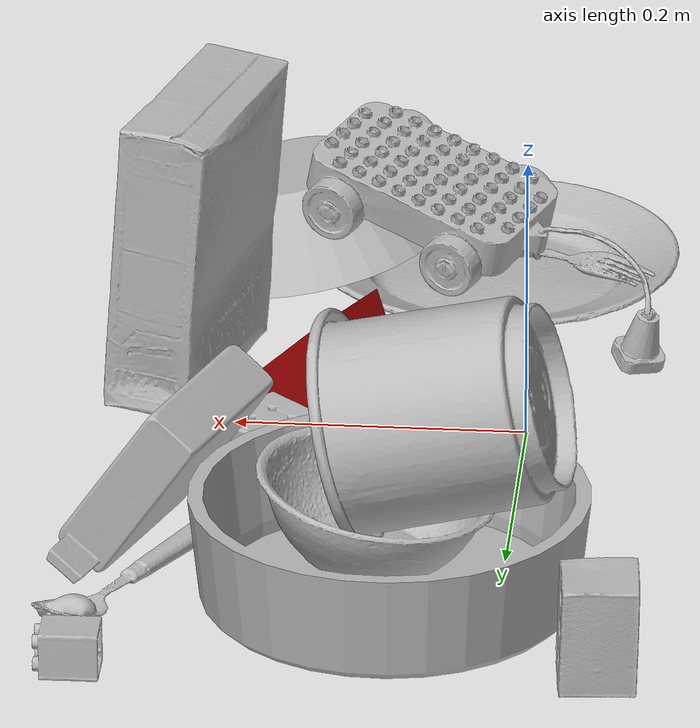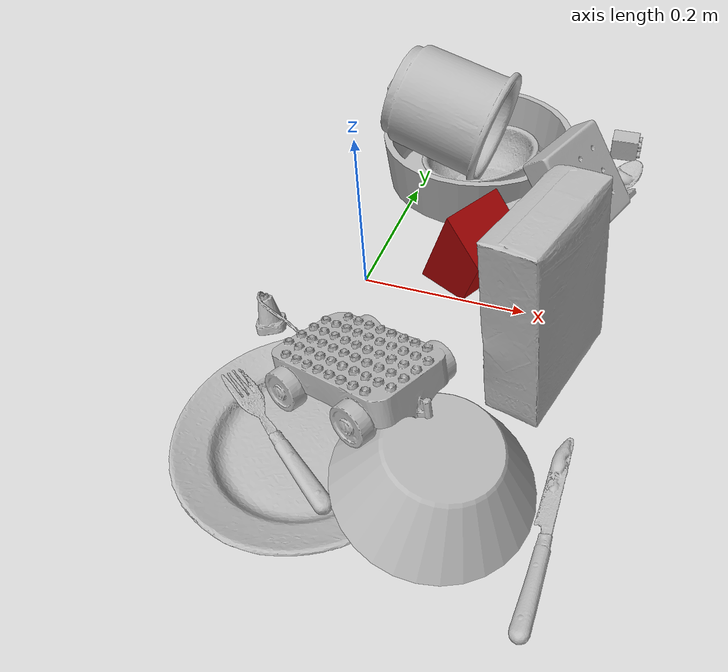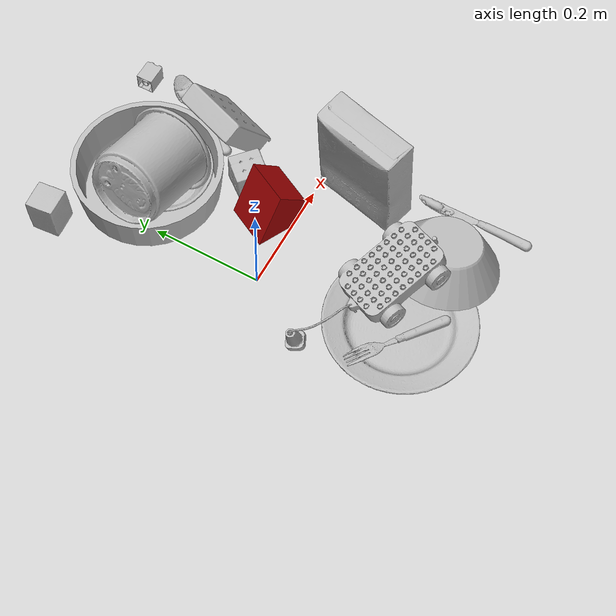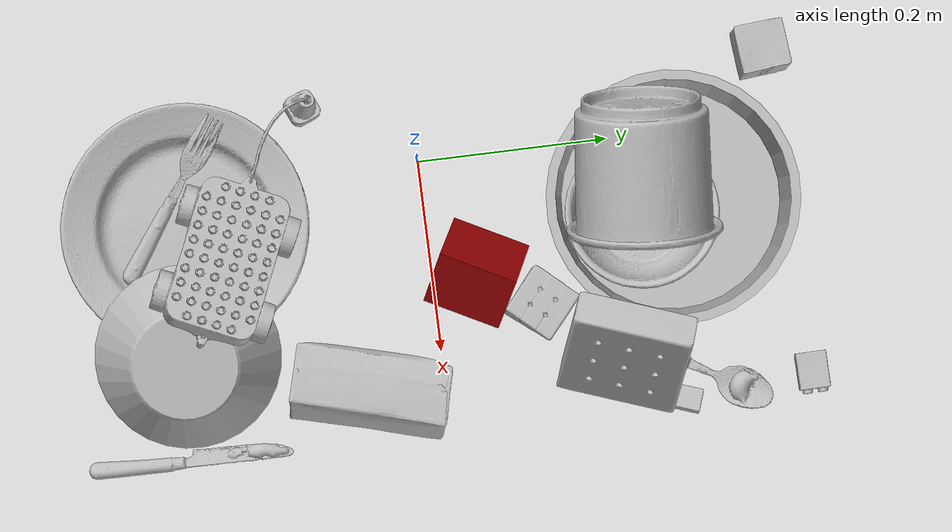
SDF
<sdf version="1.4">
  <world name="default">
    <light name="light1" type="point">
      <pose>0 0 1 0 0 0</pose>
      <diffuse>3 3 3 1</diffuse>
      <specular>3 3 3 1</specular>
    </light>
    <light name="light2" type="point">
      <pose>0 0.5 2 0 0 0</pose>
      <diffuse>1 1 1 1</diffuse>
      <specular>1 1 1 1</specular>
    </light>
    <light name="light3" type="point">
      <pose>0 0.5 2 0 0 0</pose>
      <diffuse>3 3 3 1</diffuse>
      <specular>3 3 3 1</specular>
    </light>
    <scene>
      <ambient>0.7 0.7 0.7</ambient>
    </scene>
    <model name="plate1">
      <link name="link_plate1">
        <collision name="default">
          <geometry>
            <mesh>
              <uri>model://pan_tefal/collision_meshes/collision.obj</uri>
              <scale>1.0 1.0 1.0</scale>
            </mesh>
          </geometry>
          <surface>
            <friction>
              <ode>
                <mu>0.5</mu>
                <mu2>0.5</mu2>
              </ode>
            </friction>
          <contact>
        <ode>
            <max_vel>0</max_vel>
            <min_depth>0.0001</min_depth>
            <kp>1e8</kp>
        </ode>
    </contact></surface>
        </collision>
        <visual name="default">
          <geometry>
            <mesh>
              <uri>model://pan_tefal/visual_meshes/visual.dae</uri>
              <scale>1.0 1.0 1.0</scale>
            </mesh>
          </geometry>
        </visual>
        <inertial>
          <mass>0.7575002908706665</mass>
          <pose>-0.00018002181604970247 3.278869189671241e-05 -0.00851493701338768 0.0008190213215647545 -0.0003301469994364688 -0.3318472895374236</pose>
          <inertia>
            <ixx>0.0052289874</ixx>
            <iyy>0.0052627004</iyy>
            <izz>0.009625561</izz>
            <ixy>0</ixy>
            <ixz>0</ixz>
            <iyz>0</iyz>
          </inertia>
        </inertial>
      </link>
      <pose>0.0721113309264183 0.2586056888103485 0.037962984293699265 0.00044567766699468784 0.0005794234542496426 2.2624829839365734</pose>
    </model>
    <model name="plate2">
      <link name="link_plate2">
        <collision name="default">
          <geometry>
            <mesh>
              <uri>model://plate/collision_meshes/collision.obj</uri>
              <scale>1.0 1.0 1.0</scale>
            </mesh>
          </geometry>
          <surface>
            <friction>
              <ode>
                <mu>0.5</mu>
                <mu2>0.5</mu2>
              </ode>
            </friction>
          <contact>
        <ode>
            <max_vel>0</max_vel>
            <min_depth>0.0001</min_depth>
            <kp>1e8</kp>
        </ode>
    </contact></surface>
        </collision>
        <visual name="default">
          <geometry>
            <mesh>
              <uri>model://plate/visual_meshes/visual.dae</uri>
              <scale>1.0 1.0 1.0</scale>
            </mesh>
          </geometry>
        </visual>
        <inertial>
          <mass>0.24305373430252075</mass>
          <pose>-0.0006044657784514129 0.0002782582014333457 -0.0010561988456174731 0.0022187349237576767 -0.0032255124479001144 0.4526250186623527</pose>
          <inertia>
            <ixx>0.00113701</ixx>
            <iyy>0.0011261352</iyy>
            <izz>0.0022238225</izz>
            <ixy>0</ixy>
            <ixz>0</ixz>
            <iyz>0</iyz>
          </inertia>
        </inertial>
      </link>
      <pose>0.03835368528962135 -0.25009793043136597 0.01373310387134552 6.229286185834152e-06 5.351086350583612e-06 0.7292852451922166</pose>
    </model>
    <model name="bowl1">
      <link name="link_bowl1">
        <collision name="default">
          <geometry>
            <mesh>
              <uri>model://bowl/collision_meshes/collision.obj</uri>
              <scale>1.0 1.0 1.0</scale>
            </mesh>
          </geometry>
          <surface>
            <friction>
              <ode>
                <mu>0.5</mu>
                <mu2>0.5</mu2>
              </ode>
            </friction>
          <contact>
        <ode>
            <max_vel>0</max_vel>
            <min_depth>0.0001</min_depth>
            <kp>1e8</kp>
        </ode>
    </contact></surface>
        </collision>
        <visual name="default">
          <geometry>
            <mesh>
              <uri>model://bowl/visual_meshes/visual.dae</uri>
              <scale>1.0 1.0 1.0</scale>
            </mesh>
          </geometry>
        </visual>
        <inertial>
          <mass>0.08028676360845566</mass>
          <pose>0.00020445045083761215 -0.0010302026057615876 -0.0008042661938816309 -0.015764207515600946 0.014546645366850262 0.7140316236369888</pose>
          <inertia>
            <ixx>0.00018442512</ixx>
            <iyy>0.00018030431</iyy>
            <izz>0.0003102665</izz>
            <ixy>0</ixy>
            <ixz>0</ixz>
            <iyz>0</iyz>
          </inertia>
        </inertial>
      </link>
      <pose>0.08684560656547546 0.22434920072555542 0.041465237736701965 -0.12586883607511692 0.0811523643109204 1.9311146142720839</pose>
    </model>
    <model name="bowl2">
      <link name="link_bowl2">
        <collision name="default">
          <geometry>
            <mesh>
              <uri>model://bowl_a/collision_meshes/collision.obj</uri>
              <scale>1.0 1.0 1.0</scale>
            </mesh>
          </geometry>
          <surface>
            <friction>
              <ode>
                <mu>0.5</mu>
                <mu2>0.5</mu2>
              </ode>
            </friction>
          <contact>
        <ode>
            <max_vel>0</max_vel>
            <min_depth>0.0001</min_depth>
            <kp>1e8</kp>
        </ode>
    </contact></surface>
        </collision>
        <visual name="default">
          <geometry>
            <mesh>
              <uri>model://bowl_a/visual_meshes/visual.dae</uri>
              <scale>1.0 1.0 1.0</scale>
            </mesh>
          </geometry>
        </visual>
        <inertial>
          <mass>0.2016693353652954</mass>
          <pose>0.000278673687716946 4.731108856503852e-05 -0.0013765295734629035 -0.0009805301894988984 -0.0010938186520021772 -0.19123883274053055</pose>
          <inertia>
            <ixx>0.00057416206</ixx>
            <iyy>0.000577687</iyy>
            <izz>0.0010211696</izz>
            <ixy>0</ixy>
            <ixz>0</ixz>
            <iyz>0</iyz>
          </inertia>
        </inertial>
      </link>
      <pose>0.1790096014738083 -0.2643047273159027 0.047955311834812164 3.027816744332869 -0.15377995109814166 -2.6583022662745566</pose>
    </model>
    <model name="silverware1">
      <link name="link_silverware1">
        <collision name="default">
          <geometry>
            <mesh>
              <uri>model://spoon/collision_meshes/collision.obj</uri>
              <scale>1.0 1.0 1.0</scale>
            </mesh>
          </geometry>
          <surface>
            <friction>
              <ode>
                <mu>0.5</mu>
                <mu2>0.5</mu2>
              </ode>
            </friction>
          <contact>
        <ode>
            <max_vel>0</max_vel>
            <min_depth>0.0001</min_depth>
            <kp>1e8</kp>
        </ode>
    </contact></surface>
        </collision>
        <visual name="default">
          <geometry>
            <mesh>
              <uri>model://spoon/visual_meshes/visual.dae</uri>
              <scale>1.0 1.0 1.0</scale>
            </mesh>
          </geometry>
        </visual>
        <inertial>
          <mass>0.023438503965735435</mass>
          <pose>-0.005526317749172449 -0.0016034176805987954 -0.000727164966519922 0.03521671071703309 -0.03906584129558259 0.006150610048623938</pose>
          <inertia>
            <ixx>1.3036873e-06</ixx>
            <iyy>8.918272e-05</iyy>
            <izz>8.982564e-05</izz>
            <ixy>0</ixy>
            <ixz>0</ixz>
            <iyz>0</iyz>
          </inertia>
        </inertial>
      </link>
      <pose>0.2427399754524231 0.25567111372947693 0.00838526338338852 0.006731781795711009 0.026892991533530045 1.0356352105693498</pose>
    </model>
    <model name="box1">
      <link name="link_box1">
        <collision name="default">
          <geometry>
            <mesh>
              <uri>model://cracker_box/collision_meshes/collision.obj</uri>
              <scale>1.0 1.0 1.0</scale>
            </mesh>
          </geometry>
          <surface>
            <friction>
              <ode>
                <mu>0.5</mu>
                <mu2>0.5</mu2>
              </ode>
            </friction>
          <contact>
        <ode>
            <max_vel>0</max_vel>
            <min_depth>0.0001</min_depth>
            <kp>1e8</kp>
        </ode>
    </contact></surface>
        </collision>
        <visual name="default">
          <geometry>
            <mesh>
              <uri>model://cracker_box/visual_meshes/visual.dae</uri>
              <scale>1.0 1.0 1.0</scale>
            </mesh>
          </geometry>
        </visual>
        <inertial>
          <mass>3.1733922958374023</mass>
          <pose>0.0009464119793847203 0.00025434247800149024 -0.0017029535956680775 -0.00031620768891544627 -0.011106485874643508 0.0025467963987026074</pose>
          <inertia>
            <ixx>0.008071693</ixx>
            <iyy>0.013327951</iyy>
            <izz>0.01902021</izz>
            <ixy>0</ixy>
            <ixz>0</ixz>
            <iyz>0</iyz>
          </inertia>
        </inertial>
      </link>
      <pose>0.23268653452396393 -0.0771154910326004 0.10714130848646164 -3.031022297940299 -1.5000586660093584 2.7633892316238096</pose>
    </model>
    <model name="box2">
      <link name="link_box2">
        <collision name="default">
          <geometry>
            <mesh>
              <uri>model://rubiks_cube/collision_meshes/collision.obj</uri>
              <scale>1.0 1.0 1.0</scale>
            </mesh>
          </geometry>
          <surface>
            <friction>
              <ode>
                <mu>0.5</mu>
                <mu2>0.5</mu2>
              </ode>
            </friction>
          <contact>
        <ode>
            <max_vel>0</max_vel>
            <min_depth>0.0001</min_depth>
            <kp>1e8</kp>
        </ode>
    </contact></surface>
        </collision>
        <visual name="default">
          <geometry>
            <mesh>
              <uri>model://rubiks_cube/visual_meshes/visual.dae</uri>
              <scale>1.0 1.0 1.0</scale>
            </mesh>
          </geometry>
        </visual>
        <inertial>
          <mass>0.15184316039085388</mass>
          <pose>2.6721041649580002e-05 5.2569666877388954e-05 -7.264316536748083e-06 -0.0546734747968529 -0.09813870099197174 -0.03445517010401606</pose>
          <inertia>
            <ixx>8.390353e-05</ixx>
            <iyy>8.351226e-05</iyy>
            <izz>8.459882e-05</izz>
            <ixy>0</ixy>
            <ixz>0</ixz>
            <iyz>0</iyz>
          </inertia>
        </inertial>
      </link>
      <pose>0.16393691301345825 0.11079690605401993 0.029261911287903786 1.2513634792496584 1.5373758374935425 -1.0142996560762456</pose>
    </model>
    <model name="cup1">
      <link name="link_cup1">
        <collision name="default">
          <geometry>
            <mesh>
              <uri>model://f_cups/collision_meshes/collision.obj</uri>
              <scale>2.0 2.0 2.0</scale>
            </mesh>
          </geometry>
          <surface>
            <friction>
              <ode>
                <mu>0.5</mu>
                <mu2>0.5</mu2>
              </ode>
            </friction>
          <contact>
        <ode>
            <max_vel>0</max_vel>
            <min_depth>0.0001</min_depth>
            <kp>1e8</kp>
        </ode>
    </contact></surface>
        </collision>
        <visual name="default">
          <geometry>
            <mesh>
              <uri>model://f_cups/visual_meshes/visual.dae</uri>
              <scale>2.0 2.0 2.0</scale>
            </mesh>
          </geometry>
        </visual>
        <inertial>
          <mass>0.31799542903900146</mass>
          <pose>-0.006342939101159573 -0.0012480145087465644 -0.00731107359752059 0.7862267301708457 -0.2607925342729672 -0.18237300859269054</pose>
          <inertia>
            <ixx>0.0011956966</ixx>
            <iyy>0.0012542997</iyy>
            <izz>0.001305761</izz>
            <ixy>0</ixy>
            <ixz>0</ixz>
            <iyz>0</iyz>
          </inertia>
        </inertial>
      </link>
      <pose>0.03749193996191025 0.22978290915489197 0.12083495408296585 2.2316712536160037 -1.150659103546394 0.8708966709054382</pose>
    </model>
    <model name="silverware2">
      <link name="link_silverware2">
        <collision name="default">
          <geometry>
            <mesh>
              <uri>model://knife/collision_meshes/collision.obj</uri>
              <scale>1.0 1.0 1.0</scale>
            </mesh>
          </geometry>
          <surface>
            <friction>
              <ode>
                <mu>0.5</mu>
                <mu2>0.5</mu2>
              </ode>
            </friction>
          <contact>
        <ode>
            <max_vel>0</max_vel>
            <min_depth>0.0001</min_depth>
            <kp>1e8</kp>
        </ode>
    </contact></surface>
        </collision>
        <visual name="default">
          <geometry>
            <mesh>
              <uri>model://knife/visual_meshes/visual.dae</uri>
              <scale>1.0 1.0 1.0</scale>
            </mesh>
          </geometry>
        </visual>
        <inertial>
          <mass>0.01713745854794979</mass>
          <pose>-0.02378525771200657 0.0015275123296305537 5.062021591584198e-05 0.07305753061421462 0.017248419855317693 -0.007409818535045194</pose>
          <inertia>
            <ixx>4.864306e-07</ixx>
            <iyy>6.583934e-05</iyy>
            <izz>6.5996e-05</izz>
            <ixy>0</ixy>
            <ixz>0</ixz>
            <iyz>0</iyz>
          </inertia>
        </inertial>
      </link>
      <pose>0.28079843521118164 -0.2739860415458679 0.005810769274830818 2.8893663551541486 0.025914595375367958 1.5569971596162446</pose>
    </model>
    <model name="silverware3">
      <link name="link_silverware3">
        <collision name="default">
          <geometry>
            <mesh>
              <uri>model://fork/collision_meshes/collision.obj</uri>
              <scale>1.0 1.0 1.0</scale>
            </mesh>
          </geometry>
          <surface>
            <friction>
              <ode>
                <mu>0.5</mu>
                <mu2>0.5</mu2>
              </ode>
            </friction>
          <contact>
        <ode>
            <max_vel>0</max_vel>
            <min_depth>0.0001</min_depth>
            <kp>1e8</kp>
        </ode>
    </contact></surface>
        </collision>
        <visual name="default">
          <geometry>
            <mesh>
              <uri>model://fork/visual_meshes/visual.dae</uri>
              <scale>1.0 1.0 1.0</scale>
            </mesh>
          </geometry>
        </visual>
        <inertial>
          <mass>0.012323527596890926</mass>
          <pose>-0.029570043087005615 0.00046588233090005815 0.0003218861238565296 -0.013551145261099908 -0.01097783717976447 0.01445390335153306</pose>
          <inertia>
            <ixx>4.3200933e-07</ixx>
            <iyy>3.2173175e-05</iyy>
            <izz>3.236641e-05</izz>
            <ixy>0</ixy>
            <ixz>0</ixz>
            <iyz>0</iyz>
          </inertia>
        </inertial>
      </link>
      <pose>0.009671404957771301 -0.26123568415641785 0.020120790228247643 -2.9927551181966283 -0.11688730964462415 2.5271683775187825</pose>
    </model>
    <model name="toy1">
      <link name="link_toy1">
        <collision name="default">
          <geometry>
            <mesh>
              <uri>model://foam_brick/collision_meshes/collision.obj</uri>
              <scale>1.0 1.0 1.0</scale>
            </mesh>
          </geometry>
          <surface>
            <friction>
              <ode>
                <mu>0.5</mu>
                <mu2>0.5</mu2>
              </ode>
            </friction>
          <contact>
        <ode>
            <max_vel>0</max_vel>
            <min_depth>0.0001</min_depth>
            <kp>1e8</kp>
        </ode>
    </contact></surface>
        </collision>
        <visual name="default">
          <geometry>
            <mesh>
              <uri>model://foam_brick/visual_meshes/visual.dae</uri>
              <scale>1.0 1.0 1.0</scale>
            </mesh>
          </geometry>
        </visual>
        <inertial>
          <mass>0.22379855811595917</mass>
          <pose>-0.00025224717683158815 0.0003458436403889209 -0.0002532101352699101 -0.29401565582258504 0.017274431815567964 -0.0007449878256007176</pose>
          <inertia>
            <ixx>9.775939e-05</ixx>
            <iyy>0.00015607789</iyy>
            <izz>0.00015806146</izz>
            <ixy>0</ixy>
            <ixz>0</ixz>
            <iyz>0</iyz>
          </inertia>
        </inertial>
      </link>
      <pose>-0.07157544046640396 0.3701091706752777 0.038719888776540756 0.5938548590113056 -1.539206044354562 2.646155922864693</pose>
    </model>
    <model name="toy2">
      <link name="link_toy2">
        <collision name="default">
          <geometry>
            <mesh>
              <uri>model://g_lego_duplo/collision_meshes/collision.obj</uri>
              <scale>1.0 1.0 1.0</scale>
            </mesh>
          </geometry>
          <surface>
            <friction>
              <ode>
                <mu>0.5</mu>
                <mu2>0.5</mu2>
              </ode>
            </friction>
          <contact>
        <ode>
            <max_vel>0</max_vel>
            <min_depth>0.0001</min_depth>
            <kp>1e8</kp>
        </ode>
    </contact></surface>
        </collision>
        <visual name="default">
          <geometry>
            <mesh>
              <uri>model://g_lego_duplo/visual_meshes/visual.dae</uri>
              <scale>1.0 1.0 1.0</scale>
            </mesh>
          </geometry>
        </visual>
        <inertial>
          <mass>0.5124852657318115</mass>
          <pose>-0.05004769191145897 0.0017554633086547256 0.003880675183609128 0.010962987419080987 0.0381082502855883 -0.09653031806986456</pose>
          <inertia>
            <ixx>0.0007425969</ixx>
            <iyy>0.0022451086</iyy>
            <izz>0.0028087152</izz>
            <ixy>0</ixy>
            <ixz>0</ixz>
            <iyz>0</iyz>
          </inertia>
        </inertial>
      </link>
      <pose>0.030231930315494537 -0.18286901712417603 0.06904587894678116 0.1043520336593941 0.2529258872740203 2.735616057863342</pose>
    </model>
    <model name="toy3">
      <link name="link_toy3">
        <collision name="default">
          <geometry>
            <mesh>
              <uri>model://nine_hole_peg_test/collision_meshes/collision.obj</uri>
              <scale>1.0 1.0 1.0</scale>
            </mesh>
          </geometry>
          <surface>
            <friction>
              <ode>
                <mu>0.5</mu>
                <mu2>0.5</mu2>
              </ode>
            </friction>
          <contact>
        <ode>
            <max_vel>0</max_vel>
            <min_depth>0.0001</min_depth>
            <kp>1e8</kp>
        </ode>
    </contact></surface>
        </collision>
        <visual name="default">
          <geometry>
            <mesh>
              <uri>model://nine_hole_peg_test/visual_meshes/visual.dae</uri>
              <scale>1.0 1.0 1.0</scale>
            </mesh>
          </geometry>
        </visual>
        <inertial>
          <mass>0.8364987969398499</mass>
          <pose>-0.004617386497557163 -0.009647614322602749 2.6460691515239887e-05 -0.0014666793226822761 0.000719418076932787 -0.634241593386854</pose>
          <inertia>
            <ixx>0.0013080036</ixx>
            <iyy>0.0012212693</iyy>
            <izz>0.0022920077</izz>
            <ixy>0</ixy>
            <ixz>0</ixz>
            <iyz>0</iyz>
          </inertia>
        </inertial>
      </link>
      <pose>0.23250199854373932 0.20005327463150024 0.05804316699504852 0.003094839850506782 0.9650694546490659 -0.3454461415510978</pose>
    </model>
    <model name="toy4">
      <link name="link_toy4">
        <collision name="default">
          <geometry>
            <mesh>
              <uri>model://b_lego_duplo/collision_meshes/collision.obj</uri>
              <scale>1.0 1.0 1.0</scale>
            </mesh>
          </geometry>
          <surface>
            <friction>
              <ode>
                <mu>0.5</mu>
                <mu2>0.5</mu2>
              </ode>
            </friction>
          <contact>
        <ode>
            <max_vel>0</max_vel>
            <min_depth>0.0001</min_depth>
            <kp>1e8</kp>
        </ode>
    </contact></surface>
        </collision>
        <visual name="default">
          <geometry>
            <mesh>
              <uri>model://b_lego_duplo/visual_meshes/visual.dae</uri>
              <scale>1.0 1.0 1.0</scale>
            </mesh>
          </geometry>
        </visual>
        <inertial>
          <mass>0.0316849946975708</mass>
          <pose>-0.00011053055641241372 -9.15226701181382e-06 0.0019294292433187366 -0.03749472548528336 -0.026354304906346077 0.4518915128408031</pose>
          <inertia>
            <ixx>6.4845735e-06</ixx>
            <iyy>6.5281647e-06</iyy>
            <izz>5.777544e-06</izz>
            <ixy>0</ixy>
            <ixz>0</ixz>
            <iyz>0</iyz>
          </inertia>
        </inertial>
      </link>
      <pose>0.2706206738948822 0.38342970609664917 0.016121190041303635 1.5723711322597163 -0.012010391790831163 1.593067327848265</pose>
    </model>
    <model name="toy5">
      <link name="link_toy5">
        <collision name="default">
          <geometry>
            <mesh>
              <uri>model://prism/collision_meshes/collision.obj</uri>
              <scale>1.0 1.0 1.0</scale>
            </mesh>
          </geometry>
          <surface>
            <friction>
              <ode>
                <mu>0.5</mu>
                <mu2>0.5</mu2>
              </ode>
            </friction>
          <contact>
        <ode>
            <max_vel>0</max_vel>
            <min_depth>0.0001</min_depth>
            <kp>1e8</kp>
        </ode>
    </contact></surface>
        </collision>
        <visual name="default">
          <geometry>
            <mesh>
              <uri>model://prism/visual_meshes/visual.dae</uri>
              <scale>1.0 1.0 1.0</scale>
            </mesh>
          </geometry>
        </visual>
        <inertial>
          <mass>0.34586653113365173</mass>
          <pose>-9.853597293840721e-05 -4.96157269935793e-07 -0.0033869100734591484 0.0 0.006559180766136186 0.0</pose>
          <inertia>
            <ixx>0.00031214024</ixx>
            <iyy>0.00037722557</iyy>
            <izz>0.00046205617</izz>
            <ixy>0</ixy>
            <ixz>0</ixz>
            <iyz>0</iyz>
          </inertia>
        </inertial>
      </link>
      <pose>0.12816566228866577 0.0446363165974617 0.04270760342478752 3.1415910025438407 1.1942063154175906 2.6605971786041063</pose>
    </model>
  <physics type="ode">
      <max_contacts>50</max_contacts>
      <ode>
        <solver>
          <type>quick</type>
          <iters>75</iters>
        </solver>
        <constraints>
          <contact_max_correcting_vel>0</contact_max_correcting_vel>
          <contact_surface_layer>0</contact_surface_layer>
        </constraints>
      </ode>
    </physics></world>
</sdf>
